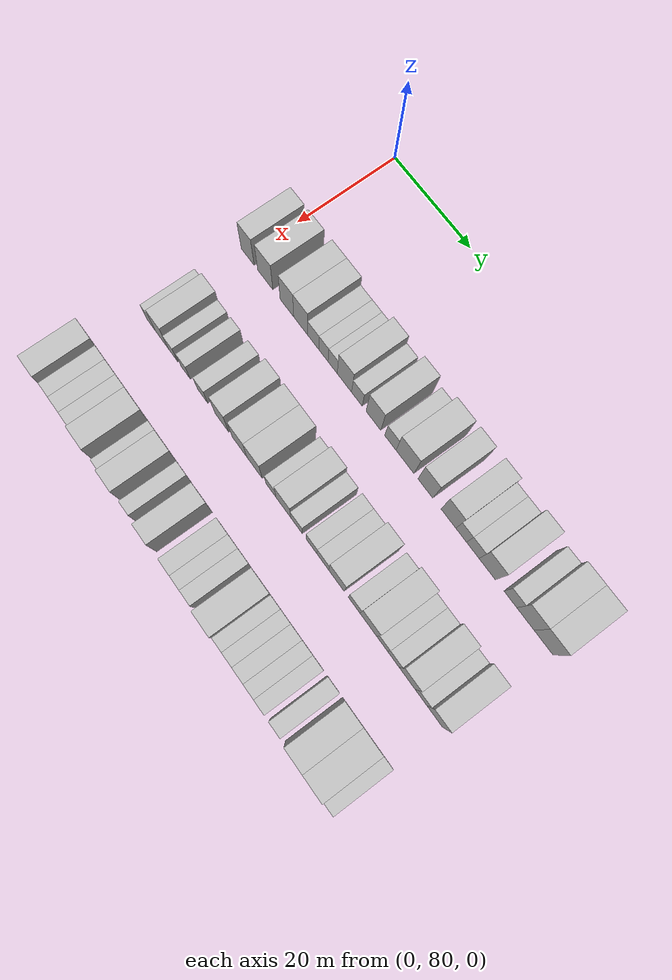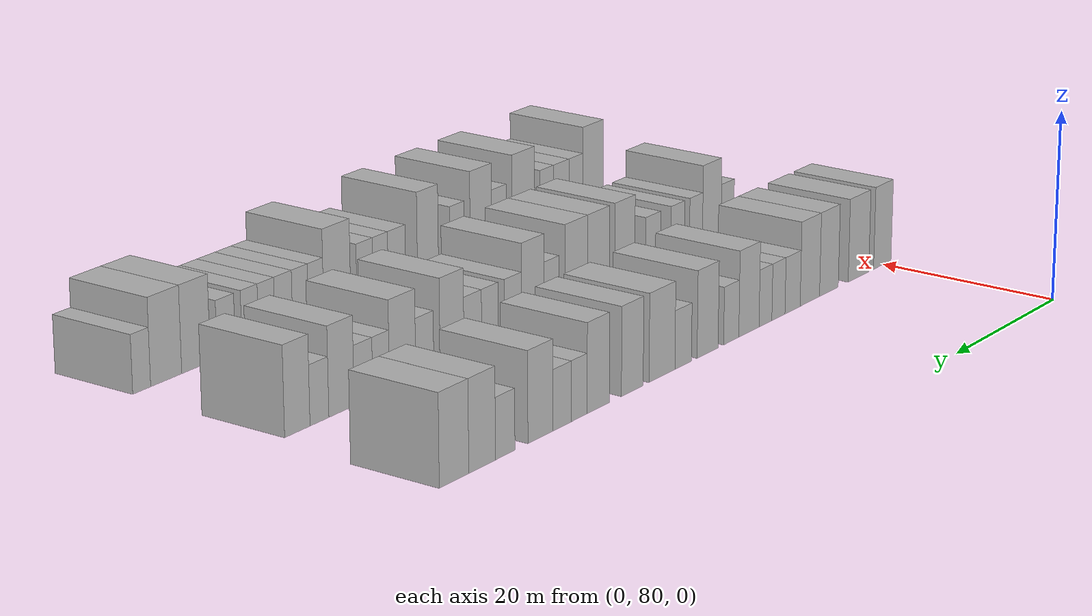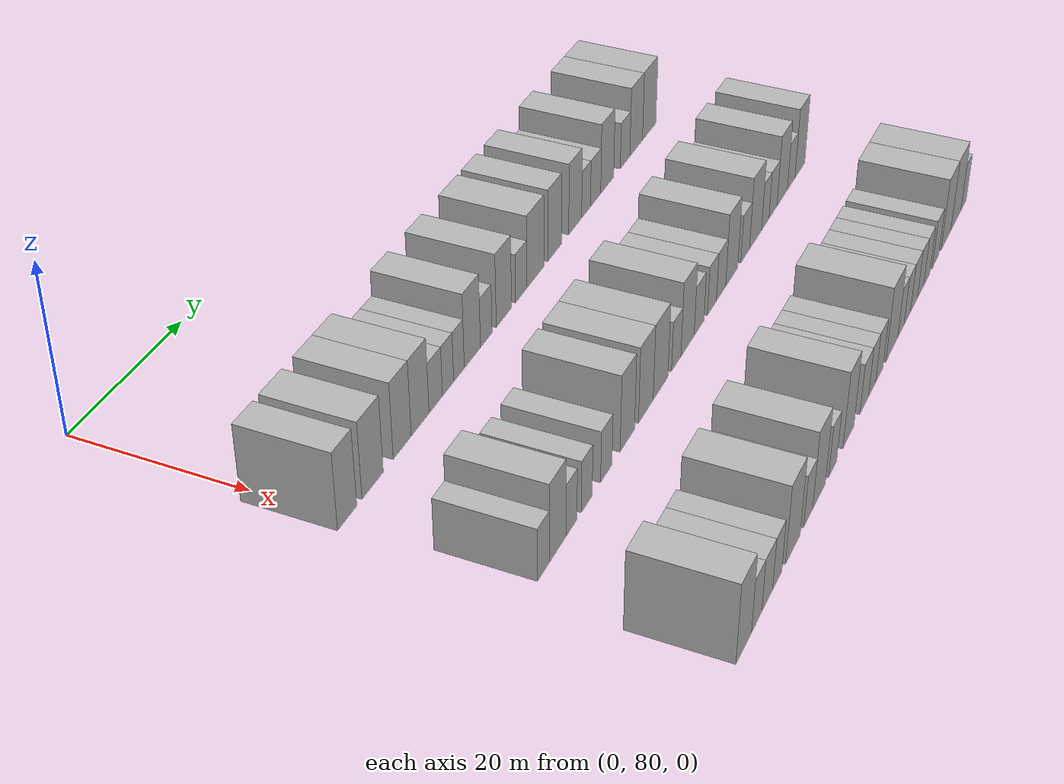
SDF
<sdf version="1.6">
 <world name="default">
  <model name="building_81">
   <static>1</static>
   <pose>25.0000 80.2235 0 0.000000 0.000000 0.000000</pose>
   <link name="link">
    <pose>0 0 4.50 0 0 0</pose>
    <collision name="collision"><geometry><box><size>10.0000 3.6132 9.0000</size></box></geometry></collision>
    <visual name="visual">
     <cast_shadows>0</cast_shadows>
     <geometry><box><size>10.0000 3.6132 9.0000</size></box></geometry>
     <material>
      <script>
       <uri>model://HANNAS_wall/materials/scripts</uri>
       <uri>model://HANNAS_wall/materials/textures</uri>
       <name>vrc/HANNAS_wall</name>
      </script>
     </material>
    </visual>
   </link>
  </model>
  <model name="building_82">
   <static>1</static>
   <pose>25.0000 85.1153 0 0.000000 0.000000 0.000000</pose>
   <link name="link">
    <pose>0 0 4.50 0 0 0</pose>
    <collision name="collision"><geometry><box><size>10.0000 4.1705 9.0000</size></box></geometry></collision>
    <visual name="visual">
     <cast_shadows>0</cast_shadows>
     <geometry><box><size>10.0000 4.1705 9.0000</size></box></geometry>
     <material>
      <script>
       <uri>model://HANNAS_wall/materials/scripts</uri>
       <uri>model://HANNAS_wall/materials/textures</uri>
       <name>vrc/HANNAS_wall</name>
      </script>
     </material>
    </visual>
   </link>
  </model>
  <model name="building_83">
   <static>1</static>
   <pose>25.0000 91.0517 0 0.000000 0.000000 0.000000</pose>
   <link name="link">
    <pose>0 0 4.50 0 0 0</pose>
    <collision name="collision"><geometry><box><size>10.0000 3.7021 9.0000</size></box></geometry></collision>
    <visual name="visual">
     <cast_shadows>0</cast_shadows>
     <geometry><box><size>10.0000 3.7021 9.0000</size></box></geometry>
     <material>
      <script>
       <uri>model://HANNAS_wall/materials/scripts</uri>
       <uri>model://HANNAS_wall/materials/textures</uri>
       <name>vrc/HANNAS_wall</name>
      </script>
     </material>
    </visual>
   </link>
  </model>
  <model name="building_84">
   <static>1</static>
   <pose>25.0000 94.7912 0 0.000000 0.000000 0.000000</pose>
   <link name="link">
    <pose>0 0 4.50 0 0 0</pose>
    <collision name="collision"><geometry><box><size>10.0000 3.7769 9.0000</size></box></geometry></collision>
    <visual name="visual">
     <cast_shadows>0</cast_shadows>
     <geometry><box><size>10.0000 3.7769 9.0000</size></box></geometry>
     <material>
      <script>
       <uri>model://HANNAS_wall/materials/scripts</uri>
       <uri>model://HANNAS_wall/materials/textures</uri>
       <name>vrc/HANNAS_wall</name>
      </script>
     </material>
    </visual>
   </link>
  </model>
  <model name="building_85">
   <static>1</static>
   <pose>25.0000 98.1392 0 0.000000 0.000000 0.000000</pose>
   <link name="link">
    <pose>0 0 3.00 0 0 0</pose>
    <collision name="collision"><geometry><box><size>10.0000 2.9192 6.0000</size></box></geometry></collision>
    <visual name="visual">
     <cast_shadows>0</cast_shadows>
     <geometry><box><size>10.0000 2.9192 6.0000</size></box></geometry>
     <material>
      <script>
       <uri>model://HANNAS_wall/materials/scripts</uri>
       <uri>model://HANNAS_wall/materials/textures</uri>
       <name>vrc/HANNAS_wall</name>
      </script>
     </material>
    </visual>
   </link>
  </model>
  <model name="building_86">
   <static>1</static>
   <pose>25.0000 100.8425 0 0.000000 0.000000 0.000000</pose>
   <link name="link">
    <pose>0 0 3.00 0 0 0</pose>
    <collision name="collision"><geometry><box><size>10.0000 2.4873 6.0000</size></box></geometry></collision>
    <visual name="visual">
     <cast_shadows>0</cast_shadows>
     <geometry><box><size>10.0000 2.4873 6.0000</size></box></geometry>
     <material>
      <script>
       <uri>model://HANNAS_wall/materials/scripts</uri>
       <uri>model://HANNAS_wall/materials/textures</uri>
       <name>vrc/HANNAS_wall</name>
      </script>
     </material>
    </visual>
   </link>
  </model>
  <model name="building_87">
   <static>1</static>
   <pose>25.0000 103.2883 0 0.000000 0.000000 0.000000</pose>
   <link name="link">
    <pose>0 0 3.00 0 0 0</pose>
    <collision name="collision"><geometry><box><size>10.0000 2.4044 6.0000</size></box></geometry></collision>
    <visual name="visual">
     <cast_shadows>0</cast_shadows>
     <geometry><box><size>10.0000 2.4044 6.0000</size></box></geometry>
     <material>
      <script>
       <uri>model://HANNAS_wall/materials/scripts</uri>
       <uri>model://HANNAS_wall/materials/textures</uri>
       <name>vrc/HANNAS_wall</name>
      </script>
     </material>
    </visual>
   </link>
  </model>
  <model name="building_88">
   <static>1</static>
   <pose>25.0000 106.3602 0 0.000000 0.000000 0.000000</pose>
   <link name="link">
    <pose>0 0 4.50 0 0 0</pose>
    <collision name="collision"><geometry><box><size>10.0000 3.7394 9.0000</size></box></geometry></collision>
    <visual name="visual">
     <cast_shadows>0</cast_shadows>
     <geometry><box><size>10.0000 3.7394 9.0000</size></box></geometry>
     <material>
      <script>
       <uri>model://HANNAS_wall/materials/scripts</uri>
       <uri>model://HANNAS_wall/materials/textures</uri>
       <name>vrc/HANNAS_wall</name>
      </script>
     </material>
    </visual>
   </link>
  </model>
  <model name="building_89">
   <static>1</static>
   <pose>25.0000 109.6116 0 0.000000 0.000000 0.000000</pose>
   <link name="link">
    <pose>0 0 3.00 0 0 0</pose>
    <collision name="collision"><geometry><box><size>10.0000 2.7633 6.0000</size></box></geometry></collision>
    <visual name="visual">
     <cast_shadows>0</cast_shadows>
     <geometry><box><size>10.0000 2.7633 6.0000</size></box></geometry>
     <material>
      <script>
       <uri>model://HANNAS_wall/materials/scripts</uri>
       <uri>model://HANNAS_wall/materials/textures</uri>
       <name>vrc/HANNAS_wall</name>
      </script>
     </material>
    </visual>
   </link>
  </model>
  <model name="building_90">
   <static>1</static>
   <pose>25.0000 113.8682 0 0.000000 0.000000 0.000000</pose>
   <link name="link">
    <pose>0 0 4.50 0 0 0</pose>
    <collision name="collision"><geometry><box><size>10.0000 3.7500 9.0000</size></box></geometry></collision>
    <visual name="visual">
     <cast_shadows>0</cast_shadows>
     <geometry><box><size>10.0000 3.7500 9.0000</size></box></geometry>
     <material>
      <script>
       <uri>model://HANNAS_wall/materials/scripts</uri>
       <uri>model://HANNAS_wall/materials/textures</uri>
       <name>vrc/HANNAS_wall</name>
      </script>
     </material>
    </visual>
   </link>
  </model>
  <model name="building_91">
   <static>1</static>
   <pose>25.0000 118.1881 0 0.000000 0.000000 0.000000</pose>
   <link name="link">
    <pose>0 0 3.00 0 0 0</pose>
    <collision name="collision"><geometry><box><size>10.0000 2.8897 6.0000</size></box></geometry></collision>
    <visual name="visual">
     <cast_shadows>0</cast_shadows>
     <geometry><box><size>10.0000 2.8897 6.0000</size></box></geometry>
     <material>
      <script>
       <uri>model://HANNAS_wall/materials/scripts</uri>
       <uri>model://HANNAS_wall/materials/textures</uri>
       <name>vrc/HANNAS_wall</name>
      </script>
     </material>
    </visual>
   </link>
  </model>
  <model name="building_92">
   <static>1</static>
   <pose>25.0000 121.8545 0 0.000000 0.000000 0.000000</pose>
   <link name="link">
    <pose>0 0 4.50 0 0 0</pose>
    <collision name="collision"><geometry><box><size>10.0000 4.4433 9.0000</size></box></geometry></collision>
    <visual name="visual">
     <cast_shadows>0</cast_shadows>
     <geometry><box><size>10.0000 4.4433 9.0000</size></box></geometry>
     <material>
      <script>
       <uri>model://HANNAS_wall/materials/scripts</uri>
       <uri>model://HANNAS_wall/materials/textures</uri>
       <name>vrc/HANNAS_wall</name>
      </script>
     </material>
    </visual>
   </link>
  </model>
  <model name="building_93">
   <static>1</static>
   <pose>25.0000 126.9048 0 0.000000 0.000000 0.000000</pose>
   <link name="link">
    <pose>0 0 4.50 0 0 0</pose>
    <collision name="collision"><geometry><box><size>10.0000 3.6571 9.0000</size></box></geometry></collision>
    <visual name="visual">
     <cast_shadows>0</cast_shadows>
     <geometry><box><size>10.0000 3.6571 9.0000</size></box></geometry>
     <material>
      <script>
       <uri>model://HANNAS_wall/materials/scripts</uri>
       <uri>model://HANNAS_wall/materials/textures</uri>
       <name>vrc/HANNAS_wall</name>
      </script>
     </material>
    </visual>
   </link>
  </model>
  <model name="building_94">
   <static>1</static>
   <pose>25.0000 132.5407 0 0.000000 0.000000 0.000000</pose>
   <link name="link">
    <pose>0 0 4.50 0 0 0</pose>
    <collision name="collision"><geometry><box><size>10.0000 3.6147 9.0000</size></box></geometry></collision>
    <visual name="visual">
     <cast_shadows>0</cast_shadows>
     <geometry><box><size>10.0000 3.6147 9.0000</size></box></geometry>
     <material>
      <script>
       <uri>model://HANNAS_wall/materials/scripts</uri>
       <uri>model://HANNAS_wall/materials/textures</uri>
       <name>vrc/HANNAS_wall</name>
      </script>
     </material>
    </visual>
   </link>
  </model>
  <model name="building_95">
   <static>1</static>
   <pose>25.0000 135.6192 0 0.000000 0.000000 0.000000</pose>
   <link name="link">
    <pose>0 0 3.00 0 0 0</pose>
    <collision name="collision"><geometry><box><size>10.0000 2.5423 6.0000</size></box></geometry></collision>
    <visual name="visual">
     <cast_shadows>0</cast_shadows>
     <geometry><box><size>10.0000 2.5423 6.0000</size></box></geometry>
     <material>
      <script>
       <uri>model://HANNAS_wall/materials/scripts</uri>
       <uri>model://HANNAS_wall/materials/textures</uri>
       <name>vrc/HANNAS_wall</name>
      </script>
     </material>
    </visual>
   </link>
  </model>
  <model name="building_96">
   <static>1</static>
   <pose>25.0000 138.3678 0 0.000000 0.000000 0.000000</pose>
   <link name="link">
    <pose>0 0 3.00 0 0 0</pose>
    <collision name="collision"><geometry><box><size>10.0000 2.9550 6.0000</size></box></geometry></collision>
    <visual name="visual">
     <cast_shadows>0</cast_shadows>
     <geometry><box><size>10.0000 2.9550 6.0000</size></box></geometry>
     <material>
      <script>
       <uri>model://HANNAS_wall/materials/scripts</uri>
       <uri>model://HANNAS_wall/materials/textures</uri>
       <name>vrc/HANNAS_wall</name>
      </script>
     </material>
    </visual>
   </link>
  </model>
  <model name="building_97">
   <static>1</static>
   <pose>25.0000 141.7847 0 0.000000 0.000000 0.000000</pose>
   <link name="link">
    <pose>0 0 4.50 0 0 0</pose>
    <collision name="collision"><geometry><box><size>10.0000 3.8787 9.0000</size></box></geometry></collision>
    <visual name="visual">
     <cast_shadows>0</cast_shadows>
     <geometry><box><size>10.0000 3.8787 9.0000</size></box></geometry>
     <material>
      <script>
       <uri>model://HANNAS_wall/materials/scripts</uri>
       <uri>model://HANNAS_wall/materials/textures</uri>
       <name>vrc/HANNAS_wall</name>
      </script>
     </material>
    </visual>
   </link>
  </model>
  <model name="building_98">
   <static>1</static>
   <pose>25.0000 147.2015 0 0.000000 0.000000 0.000000</pose>
   <link name="link">
    <pose>0 0 3.00 0 0 0</pose>
    <collision name="collision"><geometry><box><size>10.0000 2.9551 6.0000</size></box></geometry></collision>
    <visual name="visual">
     <cast_shadows>0</cast_shadows>
     <geometry><box><size>10.0000 2.9551 6.0000</size></box></geometry>
     <material>
      <script>
       <uri>model://HANNAS_wall/materials/scripts</uri>
       <uri>model://HANNAS_wall/materials/textures</uri>
       <name>vrc/HANNAS_wall</name>
      </script>
     </material>
    </visual>
   </link>
  </model>
  <model name="building_99">
   <static>1</static>
   <pose>25.0000 150.6705 0 0.000000 0.000000 0.000000</pose>
   <link name="link">
    <pose>0 0 4.50 0 0 0</pose>
    <collision name="collision"><geometry><box><size>10.0000 3.9829 9.0000</size></box></geometry></collision>
    <visual name="visual">
     <cast_shadows>0</cast_shadows>
     <geometry><box><size>10.0000 3.9829 9.0000</size></box></geometry>
     <material>
      <script>
       <uri>model://HANNAS_wall/materials/scripts</uri>
       <uri>model://HANNAS_wall/materials/textures</uri>
       <name>vrc/HANNAS_wall</name>
      </script>
     </material>
    </visual>
   </link>
  </model>
  <model name="building_100">
   <static>1</static>
   <pose>25.0000 154.8168 0 0.000000 0.000000 0.000000</pose>
   <link name="link">
    <pose>0 0 4.50 0 0 0</pose>
    <collision name="collision"><geometry><box><size>10.0000 4.3096 9.0000</size></box></geometry></collision>
    <visual name="visual">
     <cast_shadows>0</cast_shadows>
     <geometry><box><size>10.0000 4.3096 9.0000</size></box></geometry>
     <material>
      <script>
       <uri>model://HANNAS_wall/materials/scripts</uri>
       <uri>model://HANNAS_wall/materials/textures</uri>
       <name>vrc/HANNAS_wall</name>
      </script>
     </material>
    </visual>
   </link>
  </model>
  <model name="building_208">
   <static>1</static>
   <pose>44.0000 80.8867 0 0.000000 0.000000 0.000000</pose>
   <link name="link">
    <pose>0 0 3.00 0 0 0</pose>
    <collision name="collision"><geometry><box><size>10.0000 2.5484 6.0000</size></box></geometry></collision>
    <visual name="visual">
     <cast_shadows>0</cast_shadows>
     <geometry><box><size>10.0000 2.5484 6.0000</size></box></geometry>
     <material>
      <script>
       <uri>model://HANNAS_wall/materials/scripts</uri>
       <uri>model://HANNAS_wall/materials/textures</uri>
       <name>vrc/HANNAS_wall</name>
      </script>
     </material>
    </visual>
   </link>
  </model>
  <model name="building_209">
   <static>1</static>
   <pose>44.0000 83.9842 0 0.000000 0.000000 0.000000</pose>
   <link name="link">
    <pose>0 0 4.50 0 0 0</pose>
    <collision name="collision"><geometry><box><size>10.0000 3.6467 9.0000</size></box></geometry></collision>
    <visual name="visual">
     <cast_shadows>0</cast_shadows>
     <geometry><box><size>10.0000 3.6467 9.0000</size></box></geometry>
     <material>
      <script>
       <uri>model://HANNAS_wall/materials/scripts</uri>
       <uri>model://HANNAS_wall/materials/textures</uri>
       <name>vrc/HANNAS_wall</name>
      </script>
     </material>
    </visual>
   </link>
  </model>
  <model name="building_210">
   <static>1</static>
   <pose>44.0000 87.0691 0 0.000000 0.000000 0.000000</pose>
   <link name="link">
    <pose>0 0 3.00 0 0 0</pose>
    <collision name="collision"><geometry><box><size>10.0000 2.5231 6.0000</size></box></geometry></collision>
    <visual name="visual">
     <cast_shadows>0</cast_shadows>
     <geometry><box><size>10.0000 2.5231 6.0000</size></box></geometry>
     <material>
      <script>
       <uri>model://HANNAS_wall/materials/scripts</uri>
       <uri>model://HANNAS_wall/materials/textures</uri>
       <name>vrc/HANNAS_wall</name>
      </script>
     </material>
    </visual>
   </link>
  </model>
  <model name="building_211">
   <static>1</static>
   <pose>44.0000 90.6035 0 0.000000 0.000000 0.000000</pose>
   <link name="link">
    <pose>0 0 3.00 0 0 0</pose>
    <collision name="collision"><geometry><box><size>10.0000 2.5456 6.0000</size></box></geometry></collision>
    <visual name="visual">
     <cast_shadows>0</cast_shadows>
     <geometry><box><size>10.0000 2.5456 6.0000</size></box></geometry>
     <material>
      <script>
       <uri>model://HANNAS_wall/materials/scripts</uri>
       <uri>model://HANNAS_wall/materials/textures</uri>
       <name>vrc/HANNAS_wall</name>
      </script>
     </material>
    </visual>
   </link>
  </model>
  <model name="building_212">
   <static>1</static>
   <pose>44.0000 95.2691 0 0.000000 0.000000 0.000000</pose>
   <link name="link">
    <pose>0 0 3.00 0 0 0</pose>
    <collision name="collision"><geometry><box><size>10.0000 2.7858 6.0000</size></box></geometry></collision>
    <visual name="visual">
     <cast_shadows>0</cast_shadows>
     <geometry><box><size>10.0000 2.7858 6.0000</size></box></geometry>
     <material>
      <script>
       <uri>model://HANNAS_wall/materials/scripts</uri>
       <uri>model://HANNAS_wall/materials/textures</uri>
       <name>vrc/HANNAS_wall</name>
      </script>
     </material>
    </visual>
   </link>
  </model>
  <model name="building_213">
   <static>1</static>
   <pose>44.0000 100.4918 0 0.000000 0.000000 0.000000</pose>
   <link name="link">
    <pose>0 0 4.50 0 0 0</pose>
    <collision name="collision"><geometry><box><size>10.0000 3.6594 9.0000</size></box></geometry></collision>
    <visual name="visual">
     <cast_shadows>0</cast_shadows>
     <geometry><box><size>10.0000 3.6594 9.0000</size></box></geometry>
     <material>
      <script>
       <uri>model://HANNAS_wall/materials/scripts</uri>
       <uri>model://HANNAS_wall/materials/textures</uri>
       <name>vrc/HANNAS_wall</name>
      </script>
     </material>
    </visual>
   </link>
  </model>
  <model name="building_214">
   <static>1</static>
   <pose>44.0000 105.2656 0 0.000000 0.000000 0.000000</pose>
   <link name="link">
    <pose>0 0 4.50 0 0 0</pose>
    <collision name="collision"><geometry><box><size>10.0000 3.8883 9.0000</size></box></geometry></collision>
    <visual name="visual">
     <cast_shadows>0</cast_shadows>
     <geometry><box><size>10.0000 3.8883 9.0000</size></box></geometry>
     <material>
      <script>
       <uri>model://HANNAS_wall/materials/scripts</uri>
       <uri>model://HANNAS_wall/materials/textures</uri>
       <name>vrc/HANNAS_wall</name>
      </script>
     </material>
    </visual>
   </link>
  </model>
  <model name="building_215">
   <static>1</static>
   <pose>44.0000 109.2151 0 0.000000 0.000000 0.000000</pose>
   <link name="link">
    <pose>0 0 4.50 0 0 0</pose>
    <collision name="collision"><geometry><box><size>10.0000 4.0106 9.0000</size></box></geometry></collision>
    <visual name="visual">
     <cast_shadows>0</cast_shadows>
     <geometry><box><size>10.0000 4.0106 9.0000</size></box></geometry>
     <material>
      <script>
       <uri>model://HANNAS_wall/materials/scripts</uri>
       <uri>model://HANNAS_wall/materials/textures</uri>
       <name>vrc/HANNAS_wall</name>
      </script>
     </material>
    </visual>
   </link>
  </model>
  <model name="building_216">
   <static>1</static>
   <pose>44.0000 113.5336 0 0.000000 0.000000 0.000000</pose>
   <link name="link">
    <pose>0 0 3.00 0 0 0</pose>
    <collision name="collision"><geometry><box><size>10.0000 2.6264 6.0000</size></box></geometry></collision>
    <visual name="visual">
     <cast_shadows>0</cast_shadows>
     <geometry><box><size>10.0000 2.6264 6.0000</size></box></geometry>
     <material>
      <script>
       <uri>model://HANNAS_wall/materials/scripts</uri>
       <uri>model://HANNAS_wall/materials/textures</uri>
       <name>vrc/HANNAS_wall</name>
      </script>
     </material>
    </visual>
   </link>
  </model>
  <model name="building_217">
   <static>1</static>
   <pose>44.0000 116.7589 0 0.000000 0.000000 0.000000</pose>
   <link name="link">
    <pose>0 0 4.50 0 0 0</pose>
    <collision name="collision"><geometry><box><size>10.0000 3.8242 9.0000</size></box></geometry></collision>
    <visual name="visual">
     <cast_shadows>0</cast_shadows>
     <geometry><box><size>10.0000 3.8242 9.0000</size></box></geometry>
     <material>
      <script>
       <uri>model://HANNAS_wall/materials/scripts</uri>
       <uri>model://HANNAS_wall/materials/textures</uri>
       <name>vrc/HANNAS_wall</name>
      </script>
     </material>
    </visual>
   </link>
  </model>
  <model name="building_218">
   <static>1</static>
   <pose>44.0000 120.1202 0 0.000000 0.000000 0.000000</pose>
   <link name="link">
    <pose>0 0 3.00 0 0 0</pose>
    <collision name="collision"><geometry><box><size>10.0000 2.8983 6.0000</size></box></geometry></collision>
    <visual name="visual">
     <cast_shadows>0</cast_shadows>
     <geometry><box><size>10.0000 2.8983 6.0000</size></box></geometry>
     <material>
      <script>
       <uri>model://HANNAS_wall/materials/scripts</uri>
       <uri>model://HANNAS_wall/materials/textures</uri>
       <name>vrc/HANNAS_wall</name>
      </script>
     </material>
    </visual>
   </link>
  </model>
  <model name="building_219">
   <static>1</static>
   <pose>44.0000 123.9410 0 0.000000 0.000000 0.000000</pose>
   <link name="link">
    <pose>0 0 3.00 0 0 0</pose>
    <collision name="collision"><geometry><box><size>10.0000 2.7435 6.0000</size></box></geometry></collision>
    <visual name="visual">
     <cast_shadows>0</cast_shadows>
     <geometry><box><size>10.0000 2.7435 6.0000</size></box></geometry>
     <material>
      <script>
       <uri>model://HANNAS_wall/materials/scripts</uri>
       <uri>model://HANNAS_wall/materials/textures</uri>
       <name>vrc/HANNAS_wall</name>
      </script>
     </material>
    </visual>
   </link>
  </model>
  <model name="building_220">
   <static>1</static>
   <pose>44.0000 126.7557 0 0.000000 0.000000 0.000000</pose>
   <link name="link">
    <pose>0 0 3.00 0 0 0</pose>
    <collision name="collision"><geometry><box><size>10.0000 2.8858 6.0000</size></box></geometry></collision>
    <visual name="visual">
     <cast_shadows>0</cast_shadows>
     <geometry><box><size>10.0000 2.8858 6.0000</size></box></geometry>
     <material>
      <script>
       <uri>model://HANNAS_wall/materials/scripts</uri>
       <uri>model://HANNAS_wall/materials/textures</uri>
       <name>vrc/HANNAS_wall</name>
      </script>
     </material>
    </visual>
   </link>
  </model>
  <model name="building_221">
   <static>1</static>
   <pose>44.0000 130.1122 0 0.000000 0.000000 0.000000</pose>
   <link name="link">
    <pose>0 0 4.50 0 0 0</pose>
    <collision name="collision"><geometry><box><size>10.0000 3.8272 9.0000</size></box></geometry></collision>
    <visual name="visual">
     <cast_shadows>0</cast_shadows>
     <geometry><box><size>10.0000 3.8272 9.0000</size></box></geometry>
     <material>
      <script>
       <uri>model://HANNAS_wall/materials/scripts</uri>
       <uri>model://HANNAS_wall/materials/textures</uri>
       <name>vrc/HANNAS_wall</name>
      </script>
     </material>
    </visual>
   </link>
  </model>
  <model name="building_222">
   <static>1</static>
   <pose>44.0000 134.4414 0 0.000000 0.000000 0.000000</pose>
   <link name="link">
    <pose>0 0 3.00 0 0 0</pose>
    <collision name="collision"><geometry><box><size>10.0000 2.8314 6.0000</size></box></geometry></collision>
    <visual name="visual">
     <cast_shadows>0</cast_shadows>
     <geometry><box><size>10.0000 2.8314 6.0000</size></box></geometry>
     <material>
      <script>
       <uri>model://HANNAS_wall/materials/scripts</uri>
       <uri>model://HANNAS_wall/materials/textures</uri>
       <name>vrc/HANNAS_wall</name>
      </script>
     </material>
    </visual>
   </link>
  </model>
  <model name="building_223">
   <static>1</static>
   <pose>44.0000 137.8896 0 0.000000 0.000000 0.000000</pose>
   <link name="link">
    <pose>0 0 4.50 0 0 0</pose>
    <collision name="collision"><geometry><box><size>10.0000 4.0649 9.0000</size></box></geometry></collision>
    <visual name="visual">
     <cast_shadows>0</cast_shadows>
     <geometry><box><size>10.0000 4.0649 9.0000</size></box></geometry>
     <material>
      <script>
       <uri>model://HANNAS_wall/materials/scripts</uri>
       <uri>model://HANNAS_wall/materials/textures</uri>
       <name>vrc/HANNAS_wall</name>
      </script>
     </material>
    </visual>
   </link>
  </model>
  <model name="building_224">
   <static>1</static>
   <pose>44.0000 141.1917 0 0.000000 0.000000 0.000000</pose>
   <link name="link">
    <pose>0 0 3.00 0 0 0</pose>
    <collision name="collision"><geometry><box><size>10.0000 2.5394 6.0000</size></box></geometry></collision>
    <visual name="visual">
     <cast_shadows>0</cast_shadows>
     <geometry><box><size>10.0000 2.5394 6.0000</size></box></geometry>
     <material>
      <script>
       <uri>model://HANNAS_wall/materials/scripts</uri>
       <uri>model://HANNAS_wall/materials/textures</uri>
       <name>vrc/HANNAS_wall</name>
      </script>
     </material>
    </visual>
   </link>
  </model>
  <model name="building_225">
   <static>1</static>
   <pose>44.0000 143.8627 0 0.000000 0.000000 0.000000</pose>
   <link name="link">
    <pose>0 0 3.00 0 0 0</pose>
    <collision name="collision"><geometry><box><size>10.0000 2.8025 6.0000</size></box></geometry></collision>
    <visual name="visual">
     <cast_shadows>0</cast_shadows>
     <geometry><box><size>10.0000 2.8025 6.0000</size></box></geometry>
     <material>
      <script>
       <uri>model://HANNAS_wall/materials/scripts</uri>
       <uri>model://HANNAS_wall/materials/textures</uri>
       <name>vrc/HANNAS_wall</name>
      </script>
     </material>
    </visual>
   </link>
  </model>
  <model name="building_226">
   <static>1</static>
   <pose>44.0000 147.1320 0 0.000000 0.000000 0.000000</pose>
   <link name="link">
    <pose>0 0 4.50 0 0 0</pose>
    <collision name="collision"><geometry><box><size>10.0000 3.7362 9.0000</size></box></geometry></collision>
    <visual name="visual">
     <cast_shadows>0</cast_shadows>
     <geometry><box><size>10.0000 3.7362 9.0000</size></box></geometry>
     <material>
      <script>
       <uri>model://HANNAS_wall/materials/scripts</uri>
       <uri>model://HANNAS_wall/materials/textures</uri>
       <name>vrc/HANNAS_wall</name>
      </script>
     </material>
    </visual>
   </link>
  </model>
  <model name="building_227">
   <static>1</static>
   <pose>44.0000 150.3725 0 0.000000 0.000000 0.000000</pose>
   <link name="link">
    <pose>0 0 3.00 0 0 0</pose>
    <collision name="collision"><geometry><box><size>10.0000 2.7446 6.0000</size></box></geometry></collision>
    <visual name="visual">
     <cast_shadows>0</cast_shadows>
     <geometry><box><size>10.0000 2.7446 6.0000</size></box></geometry>
     <material>
      <script>
       <uri>model://HANNAS_wall/materials/scripts</uri>
       <uri>model://HANNAS_wall/materials/textures</uri>
       <name>vrc/HANNAS_wall</name>
      </script>
     </material>
    </visual>
   </link>
  </model>
  <model name="building_228">
   <static>1</static>
   <pose>44.0000 153.5638 0 0.000000 0.000000 0.000000</pose>
   <link name="link">
    <pose>0 0 4.50 0 0 0</pose>
    <collision name="collision"><geometry><box><size>10.0000 3.6380 9.0000</size></box></geometry></collision>
    <visual name="visual">
     <cast_shadows>0</cast_shadows>
     <geometry><box><size>10.0000 3.6380 9.0000</size></box></geometry>
     <material>
      <script>
       <uri>model://HANNAS_wall/materials/scripts</uri>
       <uri>model://HANNAS_wall/materials/textures</uri>
       <name>vrc/HANNAS_wall</name>
      </script>
     </material>
    </visual>
   </link>
  </model>
  <model name="building_335">
   <static>1</static>
   <pose>63.0000 79.1050 0 0.000000 0.000000 0.000000</pose>
   <link name="link">
    <pose>0 0 4.50 0 0 0</pose>
    <collision name="collision"><geometry><box><size>10.0000 3.9551 9.0000</size></box></geometry></collision>
    <visual name="visual">
     <cast_shadows>0</cast_shadows>
     <geometry><box><size>10.0000 3.9551 9.0000</size></box></geometry>
     <material>
      <script>
       <uri>model://HANNAS_wall/materials/scripts</uri>
       <uri>model://HANNAS_wall/materials/textures</uri>
       <name>vrc/HANNAS_wall</name>
      </script>
     </material>
    </visual>
   </link>
  </model>
  <model name="building_336">
   <static>1</static>
   <pose>63.0000 82.4162 0 0.000000 0.000000 0.000000</pose>
   <link name="link">
    <pose>0 0 3.00 0 0 0</pose>
    <collision name="collision"><geometry><box><size>10.0000 2.6674 6.0000</size></box></geometry></collision>
    <visual name="visual">
     <cast_shadows>0</cast_shadows>
     <geometry><box><size>10.0000 2.6674 6.0000</size></box></geometry>
     <material>
      <script>
       <uri>model://HANNAS_wall/materials/scripts</uri>
       <uri>model://HANNAS_wall/materials/textures</uri>
       <name>vrc/HANNAS_wall</name>
      </script>
     </material>
    </visual>
   </link>
  </model>
  <model name="building_337">
   <static>1</static>
   <pose>63.0000 85.1979 0 0.000000 0.000000 0.000000</pose>
   <link name="link">
    <pose>0 0 3.00 0 0 0</pose>
    <collision name="collision"><geometry><box><size>10.0000 2.8961 6.0000</size></box></geometry></collision>
    <visual name="visual">
     <cast_shadows>0</cast_shadows>
     <geometry><box><size>10.0000 2.8961 6.0000</size></box></geometry>
     <material>
      <script>
       <uri>model://HANNAS_wall/materials/scripts</uri>
       <uri>model://HANNAS_wall/materials/textures</uri>
       <name>vrc/HANNAS_wall</name>
      </script>
     </material>
    </visual>
   </link>
  </model>
  <model name="building_338">
   <static>1</static>
   <pose>63.0000 87.9219 0 0.000000 0.000000 0.000000</pose>
   <link name="link">
    <pose>0 0 3.00 0 0 0</pose>
    <collision name="collision"><geometry><box><size>10.0000 2.5518 6.0000</size></box></geometry></collision>
    <visual name="visual">
     <cast_shadows>0</cast_shadows>
     <geometry><box><size>10.0000 2.5518 6.0000</size></box></geometry>
     <material>
      <script>
       <uri>model://HANNAS_wall/materials/scripts</uri>
       <uri>model://HANNAS_wall/materials/textures</uri>
       <name>vrc/HANNAS_wall</name>
      </script>
     </material>
    </visual>
   </link>
  </model>
  <model name="building_339">
   <static>1</static>
   <pose>63.0000 92.3130 0 0.000000 0.000000 0.000000</pose>
   <link name="link">
    <pose>0 0 4.50 0 0 0</pose>
    <collision name="collision"><geometry><box><size>10.0000 4.2304 9.0000</size></box></geometry></collision>
    <visual name="visual">
     <cast_shadows>0</cast_shadows>
     <geometry><box><size>10.0000 4.2304 9.0000</size></box></geometry>
     <material>
      <script>
       <uri>model://HANNAS_wall/materials/scripts</uri>
       <uri>model://HANNAS_wall/materials/textures</uri>
       <name>vrc/HANNAS_wall</name>
      </script>
     </material>
    </visual>
   </link>
  </model>
  <model name="building_340">
   <static>1</static>
   <pose>63.0000 96.7512 0 0.000000 0.000000 0.000000</pose>
   <link name="link">
    <pose>0 0 3.00 0 0 0</pose>
    <collision name="collision"><geometry><box><size>10.0000 2.6460 6.0000</size></box></geometry></collision>
    <visual name="visual">
     <cast_shadows>0</cast_shadows>
     <geometry><box><size>10.0000 2.6460 6.0000</size></box></geometry>
     <material>
      <script>
       <uri>model://HANNAS_wall/materials/scripts</uri>
       <uri>model://HANNAS_wall/materials/textures</uri>
       <name>vrc/HANNAS_wall</name>
      </script>
     </material>
    </visual>
   </link>
  </model>
  <model name="building_341">
   <static>1</static>
   <pose>63.0000 100.0034 0 0.000000 0.000000 0.000000</pose>
   <link name="link">
    <pose>0 0 4.50 0 0 0</pose>
    <collision name="collision"><geometry><box><size>10.0000 3.8583 9.0000</size></box></geometry></collision>
    <visual name="visual">
     <cast_shadows>0</cast_shadows>
     <geometry><box><size>10.0000 3.8583 9.0000</size></box></geometry>
     <material>
      <script>
       <uri>model://HANNAS_wall/materials/scripts</uri>
       <uri>model://HANNAS_wall/materials/textures</uri>
       <name>vrc/HANNAS_wall</name>
      </script>
     </material>
    </visual>
   </link>
  </model>
  <model name="building_342">
   <static>1</static>
   <pose>63.0000 104.2122 0 0.000000 0.000000 0.000000</pose>
   <link name="link">
    <pose>0 0 3.00 0 0 0</pose>
    <collision name="collision"><geometry><box><size>10.0000 2.5593 6.0000</size></box></geometry></collision>
    <visual name="visual">
     <cast_shadows>0</cast_shadows>
     <geometry><box><size>10.0000 2.5593 6.0000</size></box></geometry>
     <material>
      <script>
       <uri>model://HANNAS_wall/materials/scripts</uri>
       <uri>model://HANNAS_wall/materials/textures</uri>
       <name>vrc/HANNAS_wall</name>
      </script>
     </material>
    </visual>
   </link>
  </model>
  <model name="building_343">
   <static>1</static>
   <pose>63.0000 109.2923 0 0.000000 0.000000 0.000000</pose>
   <link name="link">
    <pose>0 0 4.50 0 0 0</pose>
    <collision name="collision"><geometry><box><size>10.0000 3.6008 9.0000</size></box></geometry></collision>
    <visual name="visual">
     <cast_shadows>0</cast_shadows>
     <geometry><box><size>10.0000 3.6008 9.0000</size></box></geometry>
     <material>
      <script>
       <uri>model://HANNAS_wall/materials/scripts</uri>
       <uri>model://HANNAS_wall/materials/textures</uri>
       <name>vrc/HANNAS_wall</name>
      </script>
     </material>
    </visual>
   </link>
  </model>
  <model name="building_344">
   <static>1</static>
   <pose>63.0000 114.5546 0 0.000000 0.000000 0.000000</pose>
   <link name="link">
    <pose>0 0 3.00 0 0 0</pose>
    <collision name="collision"><geometry><box><size>10.0000 2.9238 6.0000</size></box></geometry></collision>
    <visual name="visual">
     <cast_shadows>0</cast_shadows>
     <geometry><box><size>10.0000 2.9238 6.0000</size></box></geometry>
     <material>
      <script>
       <uri>model://HANNAS_wall/materials/scripts</uri>
       <uri>model://HANNAS_wall/materials/textures</uri>
       <name>vrc/HANNAS_wall</name>
      </script>
     </material>
    </visual>
   </link>
  </model>
  <model name="building_345">
   <static>1</static>
   <pose>63.0000 117.2578 0 0.000000 0.000000 0.000000</pose>
   <link name="link">
    <pose>0 0 3.00 0 0 0</pose>
    <collision name="collision"><geometry><box><size>10.0000 2.4826 6.0000</size></box></geometry></collision>
    <visual name="visual">
     <cast_shadows>0</cast_shadows>
     <geometry><box><size>10.0000 2.4826 6.0000</size></box></geometry>
     <material>
      <script>
       <uri>model://HANNAS_wall/materials/scripts</uri>
       <uri>model://HANNAS_wall/materials/textures</uri>
       <name>vrc/HANNAS_wall</name>
      </script>
     </material>
    </visual>
   </link>
  </model>
  <model name="building_346">
   <static>1</static>
   <pose>63.0000 119.8434 0 0.000000 0.000000 0.000000</pose>
   <link name="link">
    <pose>0 0 3.00 0 0 0</pose>
    <collision name="collision"><geometry><box><size>10.0000 2.6885 6.0000</size></box></geometry></collision>
    <visual name="visual">
     <cast_shadows>0</cast_shadows>
     <geometry><box><size>10.0000 2.6885 6.0000</size></box></geometry>
     <material>
      <script>
       <uri>model://HANNAS_wall/materials/scripts</uri>
       <uri>model://HANNAS_wall/materials/textures</uri>
       <name>vrc/HANNAS_wall</name>
      </script>
     </material>
    </visual>
   </link>
  </model>
  <model name="building_347">
   <static>1</static>
   <pose>63.0000 124.3577 0 0.000000 0.000000 0.000000</pose>
   <link name="link">
    <pose>0 0 4.50 0 0 0</pose>
    <collision name="collision"><geometry><box><size>10.0000 4.3401 9.0000</size></box></geometry></collision>
    <visual name="visual">
     <cast_shadows>0</cast_shadows>
     <geometry><box><size>10.0000 4.3401 9.0000</size></box></geometry>
     <material>
      <script>
       <uri>model://HANNAS_wall/materials/scripts</uri>
       <uri>model://HANNAS_wall/materials/textures</uri>
       <name>vrc/HANNAS_wall</name>
      </script>
     </material>
    </visual>
   </link>
  </model>
  <model name="building_348">
   <static>1</static>
   <pose>63.0000 127.7383 0 0.000000 0.000000 0.000000</pose>
   <link name="link">
    <pose>0 0 3.00 0 0 0</pose>
    <collision name="collision"><geometry><box><size>10.0000 2.4211 6.0000</size></box></geometry></collision>
    <visual name="visual">
     <cast_shadows>0</cast_shadows>
     <geometry><box><size>10.0000 2.4211 6.0000</size></box></geometry>
     <material>
      <script>
       <uri>model://HANNAS_wall/materials/scripts</uri>
       <uri>model://HANNAS_wall/materials/textures</uri>
       <name>vrc/HANNAS_wall</name>
      </script>
     </material>
    </visual>
   </link>
  </model>
  <model name="building_349">
   <static>1</static>
   <pose>63.0000 130.1826 0 0.000000 0.000000 0.000000</pose>
   <link name="link">
    <pose>0 0 3.00 0 0 0</pose>
    <collision name="collision"><geometry><box><size>10.0000 2.4675 6.0000</size></box></geometry></collision>
    <visual name="visual">
     <cast_shadows>0</cast_shadows>
     <geometry><box><size>10.0000 2.4675 6.0000</size></box></geometry>
     <material>
      <script>
       <uri>model://HANNAS_wall/materials/scripts</uri>
       <uri>model://HANNAS_wall/materials/textures</uri>
       <name>vrc/HANNAS_wall</name>
      </script>
     </material>
    </visual>
   </link>
  </model>
  <model name="building_350">
   <static>1</static>
   <pose>63.0000 132.7780 0 0.000000 0.000000 0.000000</pose>
   <link name="link">
    <pose>0 0 3.00 0 0 0</pose>
    <collision name="collision"><geometry><box><size>10.0000 2.7232 6.0000</size></box></geometry></collision>
    <visual name="visual">
     <cast_shadows>0</cast_shadows>
     <geometry><box><size>10.0000 2.7232 6.0000</size></box></geometry>
     <material>
      <script>
       <uri>model://HANNAS_wall/materials/scripts</uri>
       <uri>model://HANNAS_wall/materials/textures</uri>
       <name>vrc/HANNAS_wall</name>
      </script>
     </material>
    </visual>
   </link>
  </model>
  <model name="building_351">
   <static>1</static>
   <pose>63.0000 135.3945 0 0.000000 0.000000 0.000000</pose>
   <link name="link">
    <pose>0 0 3.00 0 0 0</pose>
    <collision name="collision"><geometry><box><size>10.0000 2.5099 6.0000</size></box></geometry></collision>
    <visual name="visual">
     <cast_shadows>0</cast_shadows>
     <geometry><box><size>10.0000 2.5099 6.0000</size></box></geometry>
     <material>
      <script>
       <uri>model://HANNAS_wall/materials/scripts</uri>
       <uri>model://HANNAS_wall/materials/textures</uri>
       <name>vrc/HANNAS_wall</name>
      </script>
     </material>
    </visual>
   </link>
  </model>
  <model name="building_352">
   <static>1</static>
   <pose>63.0000 137.9075 0 0.000000 0.000000 0.000000</pose>
   <link name="link">
    <pose>0 0 3.00 0 0 0</pose>
    <collision name="collision"><geometry><box><size>10.0000 2.5160 6.0000</size></box></geometry></collision>
    <visual name="visual">
     <cast_shadows>0</cast_shadows>
     <geometry><box><size>10.0000 2.5160 6.0000</size></box></geometry>
     <material>
      <script>
       <uri>model://HANNAS_wall/materials/scripts</uri>
       <uri>model://HANNAS_wall/materials/textures</uri>
       <name>vrc/HANNAS_wall</name>
      </script>
     </material>
    </visual>
   </link>
  </model>
  <model name="building_353">
   <static>1</static>
   <pose>63.0000 141.5191 0 0.000000 0.000000 0.000000</pose>
   <link name="link">
    <pose>0 0 3.00 0 0 0</pose>
    <collision name="collision"><geometry><box><size>10.0000 2.7074 6.0000</size></box></geometry></collision>
    <visual name="visual">
     <cast_shadows>0</cast_shadows>
     <geometry><box><size>10.0000 2.7074 6.0000</size></box></geometry>
     <material>
      <script>
       <uri>model://HANNAS_wall/materials/scripts</uri>
       <uri>model://HANNAS_wall/materials/textures</uri>
       <name>vrc/HANNAS_wall</name>
      </script>
     </material>
    </visual>
   </link>
  </model>
  <model name="building_354">
   <static>1</static>
   <pose>63.0000 145.9521 0 0.000000 0.000000 0.000000</pose>
   <link name="link">
    <pose>0 0 4.50 0 0 0</pose>
    <collision name="collision"><geometry><box><size>10.0000 4.1585 9.0000</size></box></geometry></collision>
    <visual name="visual">
     <cast_shadows>0</cast_shadows>
     <geometry><box><size>10.0000 4.1585 9.0000</size></box></geometry>
     <material>
      <script>
       <uri>model://HANNAS_wall/materials/scripts</uri>
       <uri>model://HANNAS_wall/materials/textures</uri>
       <name>vrc/HANNAS_wall</name>
      </script>
     </material>
    </visual>
   </link>
  </model>
  <model name="building_355">
   <static>1</static>
   <pose>63.0000 150.2478 0 0.000000 0.000000 0.000000</pose>
   <link name="link">
    <pose>0 0 4.50 0 0 0</pose>
    <collision name="collision"><geometry><box><size>10.0000 4.4329 9.0000</size></box></geometry></collision>
    <visual name="visual">
     <cast_shadows>0</cast_shadows>
     <geometry><box><size>10.0000 4.4329 9.0000</size></box></geometry>
     <material>
      <script>
       <uri>model://HANNAS_wall/materials/scripts</uri>
       <uri>model://HANNAS_wall/materials/textures</uri>
       <name>vrc/HANNAS_wall</name>
      </script>
     </material>
    </visual>
   </link>
  </model>
  <model name="building_356">
   <static>1</static>
   <pose>63.0000 153.7184 0 0.000000 0.000000 0.000000</pose>
   <link name="link">
    <pose>0 0 3.00 0 0 0</pose>
    <collision name="collision"><geometry><box><size>10.0000 2.5084 6.0000</size></box></geometry></collision>
    <visual name="visual">
     <cast_shadows>0</cast_shadows>
     <geometry><box><size>10.0000 2.5084 6.0000</size></box></geometry>
     <material>
      <script>
       <uri>model://HANNAS_wall/materials/scripts</uri>
       <uri>model://HANNAS_wall/materials/textures</uri>
       <name>vrc/HANNAS_wall</name>
      </script>
     </material>
    </visual>
   </link>
  </model>
 </world>
</sdf>
